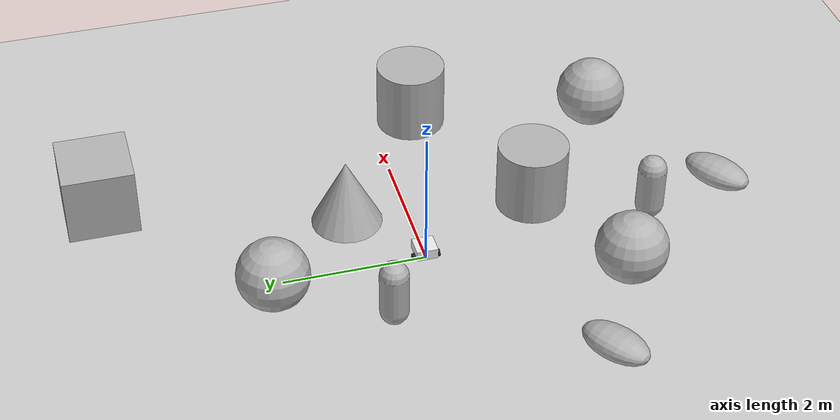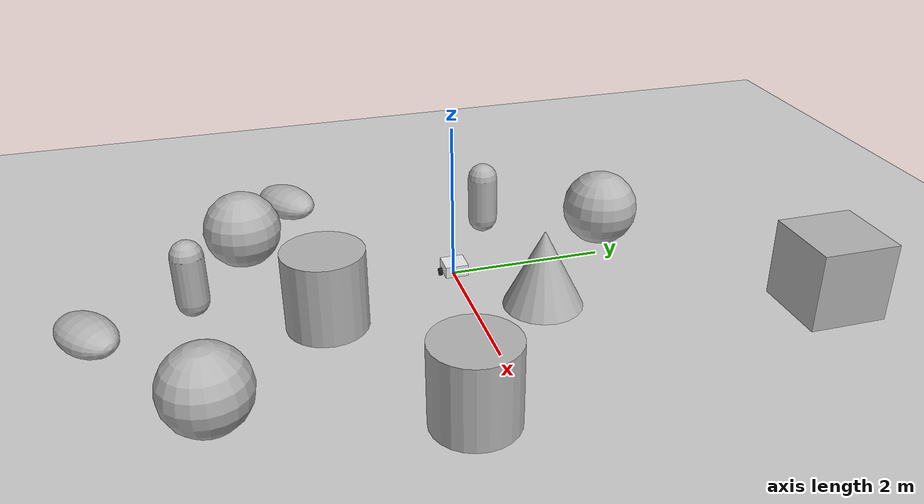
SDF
<sdf version='1.10'>
  <world name='empty'>
    <physics name='1ms' type='ignored'>
      <max_step_size>0.001</max_step_size>
      <real_time_factor>1</real_time_factor>
      <real_time_update_rate>1000</real_time_update_rate>
    </physics>
    <plugin name='gz::sim::systems::Physics' filename='gz-sim-physics-system'/>
    <plugin name='gz::sim::systems::UserCommands' filename='gz-sim-user-commands-system'/>
    <plugin name='gz::sim::systems::SceneBroadcaster' filename='gz-sim-scene-broadcaster-system'/>
    <plugin name='gz::sim::systems::Contact' filename='gz-sim-contact-system'/>
    <gravity>0 0 -9.8000000000000007</gravity>
    <magnetic_field>5.5644999999999998e-06 2.2875799999999999e-05 -4.2388400000000002e-05</magnetic_field>
    <atmosphere type='adiabatic'/>
    <scene>
      <ambient>0.400000006 0.400000006 0.400000006 1</ambient>
      <background>0.699999988 0.699999988 0.699999988 1</background>
      <shadows>true</shadows>
    </scene>
    <model name='ground_plane'>
      <static>true</static>
      <link name='link'>
        <collision name='collision'>
          <geometry>
            <plane>
              <normal>0 0 1</normal>
              <size>100 100</size>
            </plane>
          </geometry>
          <surface>
            <friction>
              <ode/>
            </friction>
            <bounce/>
            <contact/>
          </surface>
        </collision>
        <visual name='visual'>
          <geometry>
            <plane>
              <normal>0 0 1</normal>
              <size>100 100</size>
            </plane>
          </geometry>
          <material>
            <ambient>0.800000012 0.800000012 0.800000012 1</ambient>
            <diffuse>0.800000012 0.800000012 0.800000012 1</diffuse>
            <specular>0.800000012 0.800000012 0.800000012 1</specular>
          </material>
        </visual>
        <pose>0 0 0 0 0 0</pose>
        <inertial>
          <pose>0 0 0 0 0 0</pose>
          <mass>1</mass>
          <inertia>
            <ixx>1</ixx>
            <ixy>0</ixy>
            <ixz>0</ixz>
            <iyy>1</iyy>
            <iyz>0</iyz>
            <izz>1</izz>
          </inertia>
        </inertial>
        <enable_wind>false</enable_wind>
      </link>
      <pose>0 0 0 0 0 0</pose>
      <self_collide>false</self_collide>
    </model>
    <model name='robot'>
      <link name='base_link'>
        <inertial>
          <pose>0.065000000000000002 0 0.0625 0 0 0</pose>
          <mass>0.59999999999999998</mass>
          <inertia>
            <ixx>0.0052562499999999988</ixx>
            <ixy>0</ixy>
            <ixz>0.00056250000000000028</ixz>
            <iyy>0.0059312499999999964</iyy>
            <iyz>0</iyz>
            <izz>0.0082749999999999976</izz>
          </inertia>
        </inertial>
        <collision name='base_link_fixed_joint_lump__chassis_collision'>
          <pose>0.049999999999999989 0 0.074999999999999997 0 0 0</pose>
          <geometry>
            <box>
              <size>0.29999999999999999 0.29999999999999999 0.14999999999999999</size>
            </box>
          </geometry>
          <surface>
            <contact>
              <ode/>
            </contact>
            <friction>
              <ode/>
            </friction>
            <bounce/>
          </surface>
        </collision>
        <collision name='base_link_fixed_joint_lump__caster_wheel_collision_1'>
          <pose>0.14000000000000001 0 0 0 0 0</pose>
          <geometry>
            <sphere>
              <radius>0.050000000000000003</radius>
            </sphere>
          </geometry>
          <surface>
            <contact>
              <ode/>
            </contact>
            <friction>
              <ode>
                <mu>0.001</mu>
                <mu2>0.001</mu2>
              </ode>
            </friction>
            <bounce/>
          </surface>
        </collision>
        <visual name='base_link_fixed_joint_lump__chassis_visual'>
          <pose>0.049999999999999989 0 0.074999999999999997 0 0 0</pose>
          <geometry>
            <box>
              <size>0.29999999999999999 0.29999999999999999 0.14999999999999999</size>
            </box>
          </geometry>
          <material>
            <script>
              <name>Gazebo/White</name>
              <uri>file://media/materials/scripts/gazebo.material</uri>
            </script>
            <diffuse>1 1 1 0.800000012</diffuse>
            <ambient>1 1 1 0.800000012</ambient>
          </material>
        </visual>
        <visual name='base_link_fixed_joint_lump__caster_wheel_visual_1'>
          <pose>0.14000000000000001 0 0 0 0 0</pose>
          <geometry>
            <sphere>
              <radius>0.050000000000000003</radius>
            </sphere>
          </geometry>
          <material>
            <script>
              <name>Gazebo/Yellow</name>
              <uri>file://media/materials/scripts/gazebo.material</uri>
            </script>
            <diffuse>0.9375 0.9375 0.9375 1</diffuse>
            <ambient>0.9375 0.9375 0.9375 1</ambient>
          </material>
        </visual>
        <pose>0 0 0 0 0 0</pose>
        <enable_wind>false</enable_wind>
      </link>
      <joint name='left_wheel_joint' type='revolute'>
        <pose>3.0814879110195774e-33 -2.686764968359643e-19 0 -2.0293072715139102e-17 1.661834835939152e-34 1.6734078567209326e-34</pose>
        <parent>base_link</parent>
        <child>left_wheel</child>
        <axis>
          <xyz>1.661834835939152e-34 2.0293072715139102e-17 1</xyz>
          <limit>
            <lower>-inf</lower>
            <upper>inf</upper>
            <effort>inf</effort>
            <velocity>inf</velocity>
            <stiffness>100000000</stiffness>
            <dissipation>1</dissipation>
          </limit>
          <dynamics>
            <spring_reference>0</spring_reference>
            <spring_stiffness>0</spring_stiffness>
            <damping>0</damping>
            <friction>0</friction>
          </dynamics>
        </axis>
      </joint>
      <link name='left_wheel'>
        <pose>6.1148577720110018e-26 0.17499999999999996 -6.9388939039072284e-18 1.570796326794897 -2.3091550991555613e-17 3.1415926535897931</pose>
        <inertial>
          <pose>0 0 0 0 0 0</pose>
          <mass>0.10000000000000001</mass>
          <inertia>
            <ixx>7.5833333333333352e-05</ixx>
            <ixy>0</ixy>
            <ixz>0</ixz>
            <iyy>7.5833333333333352e-05</iyy>
            <iyz>0</iyz>
            <izz>0.000125</izz>
          </inertia>
        </inertial>
        <collision name='left_wheel_collision'>
          <pose>0 0 0 0 0 0</pose>
          <geometry>
            <cylinder>
              <length>0.040000000000000001</length>
              <radius>0.050000000000000003</radius>
            </cylinder>
          </geometry>
          <surface>
            <contact>
              <ode/>
            </contact>
            <friction>
              <ode/>
            </friction>
            <bounce/>
          </surface>
        </collision>
        <visual name='left_wheel_visual'>
          <pose>0 0 0 0 0 0</pose>
          <geometry>
            <cylinder>
              <length>0.040000000000000001</length>
              <radius>0.050000000000000003</radius>
            </cylinder>
          </geometry>
          <material>
            <script>
              <name>Gazebo/Black</name>
              <uri>file://media/materials/scripts/gazebo.material</uri>
            </script>
            <diffuse>0 0 0 1</diffuse>
            <ambient>0 0 0 1</ambient>
          </material>
        </visual>
        <enable_wind>false</enable_wind>
      </link>
      <joint name='right_wheel_joint' type='revolute'>
        <pose>0 6.7350005778795877e-18 0 -2.0293072715139201e-17 0 0</pose>
        <parent>base_link</parent>
        <child>right_wheel</child>
        <axis>
          <xyz>0 -2.0293072715139201e-17 -1</xyz>
          <limit>
            <lower>-inf</lower>
            <upper>inf</upper>
            <effort>inf</effort>
            <velocity>inf</velocity>
            <stiffness>100000000</stiffness>
            <dissipation>1</dissipation>
          </limit>
          <dynamics>
            <spring_reference>0</spring_reference>
            <spring_stiffness>0</spring_stiffness>
            <damping>0</damping>
            <friction>0</friction>
          </dynamics>
        </axis>
      </joint>
      <link name='right_wheel'>
        <pose>-5.8486954862918502e-26 -0.17500000000000002 0 1.5707963267948959 -1.3858752126361556e-17 5.240643682082435e-25</pose>
        <inertial>
          <pose>0 0 0 0 0 0</pose>
          <mass>0.10000000000000001</mass>
          <inertia>
            <ixx>7.5833333333333352e-05</ixx>
            <ixy>0</ixy>
            <ixz>0</ixz>
            <iyy>7.5833333333333352e-05</iyy>
            <iyz>0</iyz>
            <izz>0.000125</izz>
          </inertia>
        </inertial>
        <collision name='right_wheel_collision'>
          <pose>0 0 0 0 0 0</pose>
          <geometry>
            <cylinder>
              <length>0.040000000000000001</length>
              <radius>0.050000000000000003</radius>
            </cylinder>
          </geometry>
          <surface>
            <contact>
              <ode/>
            </contact>
            <friction>
              <ode/>
            </friction>
            <bounce/>
          </surface>
        </collision>
        <visual name='right_wheel_visual'>
          <pose>0 0 0 0 0 0</pose>
          <geometry>
            <cylinder>
              <length>0.040000000000000001</length>
              <radius>0.050000000000000003</radius>
            </cylinder>
          </geometry>
          <material>
            <script>
              <name>Gazebo/Black</name>
              <uri>file://media/materials/scripts/gazebo.material</uri>
            </script>
            <diffuse>0 0 0 1</diffuse>
            <ambient>0 0 0 1</ambient>
          </material>
        </visual>
        <enable_wind>false</enable_wind>
      </link>
      <plugin name='gz::sim::systems::DiffDrive' filename='gz-sim-diff-drive-system'>
        <left_joint>left_wheel_joint</left_joint>
        <right_joint>right_wheel_joint</right_joint>
        <wheel_separation>0.35</wheel_separation>
        <wheel_radius>0.05</wheel_radius>
        <max_linear_acceleration>20.0</max_linear_acceleration>
        <max_wheel_torque>100</max_wheel_torque>
        <topic>cmd_vel</topic>
        <odom_topic>odom</odom_topic>
        <frame_id>odom</frame_id>
        <child_frame_id>base_link</child_frame_id>
        <publish_odom>true</publish_odom>
        <publish_odom_tf>true</publish_odom_tf>
        <publish_wheel_tf>true</publish_wheel_tf>
      </plugin>
      <plugin name='gz::sim::systems::JointStatePublisher' filename='gz-sim-joint-state-publisher-system'>
        <topic>joint_states</topic>
        <joint_name>left_wheel_joint</joint_name>
        <joint_name>right_wheel_joint</joint_name>
      </plugin>
      <frame name='caster_wheel_link' attached_to='chassis'>
        <pose>0.23999999999999999 0 0 0 0 0</pose>
      </frame>
      <frame name='caster_wheel' attached_to='caster_wheel_link'>
        <pose>0 0 0 0 0 0</pose>
      </frame>
      <frame name='chassis_joint' attached_to='base_link'>
        <pose>-0.10000000000000001 0 0 0 0 0</pose>
      </frame>
      <frame name='chassis' attached_to='chassis_joint'>
        <pose>0 0 0 0 0 0</pose>
      </frame>
      <pose>5.0080660738400776e-10 -2.275982621111749e-16 0.049999994810990905 4.9679083468377787e-15 1.001613221463183e-08 -4.1162630017289003e-17</pose>
      <static>false</static>
      <self_collide>false</self_collide>
    </model>
    <model name='cone'>
      <pose>1.0566565018909955 0.8556041575203317 0.49999999602630368 2.1489919356272052e-09 -8.0147252590950264e-09 -1.0114619432479267e-14</pose>
      <link name='cone_link'>
        <inertial>
          <inertia>
            <ixx>0.074999999999999997</ixx>
            <ixy>0</ixy>
            <ixz>0</ixz>
            <iyy>0.074999999999999997</iyy>
            <iyz>0</iyz>
            <izz>0.074999999999999997</izz>
          </inertia>
          <mass>1</mass>
          <pose>0 0 0 0 0 0</pose>
        </inertial>
        <collision name='cone_collision'>
          <geometry>
            <cone>
              <radius>0.5</radius>
              <length>1</length>
            </cone>
          </geometry>
          <surface>
            <friction>
              <ode/>
            </friction>
            <bounce/>
            <contact/>
          </surface>
        </collision>
        <visual name='cone_visual'>
          <geometry>
            <cone>
              <radius>0.5</radius>
              <length>1</length>
            </cone>
          </geometry>
          <material>
            <ambient>0.300000012 0.300000012 0.300000012 1</ambient>
            <diffuse>0.699999988 0.699999988 0.699999988 1</diffuse>
            <specular>1 1 1 1</specular>
          </material>
        </visual>
        <pose>0 0 0 0 0 0</pose>
        <enable_wind>false</enable_wind>
      </link>
      <static>false</static>
      <self_collide>false</self_collide>
    </model>
    <model name='cylinder'>
      <pose>0.78746553411709375 -1.7667481294421423 0.49999999631413172 -9.6359215885351035e-18 -5.7262084307341396e-17 2.2892490610145147e-17</pose>
      <link name='cylinder_link'>
        <inertial>
          <inertia>
            <ixx>0.14580000000000001</ixx>
            <ixy>0</ixy>
            <ixz>0</ixz>
            <iyy>0.14580000000000001</iyy>
            <iyz>0</iyz>
            <izz>0.125</izz>
          </inertia>
          <mass>1</mass>
          <pose>0 0 0 0 0 0</pose>
        </inertial>
        <collision name='cylinder_collision'>
          <geometry>
            <cylinder>
              <radius>0.5</radius>
              <length>1</length>
            </cylinder>
          </geometry>
          <surface>
            <friction>
              <ode/>
            </friction>
            <bounce/>
            <contact/>
          </surface>
        </collision>
        <visual name='cylinder_visual'>
          <geometry>
            <cylinder>
              <radius>0.5</radius>
              <length>1</length>
            </cylinder>
          </geometry>
          <material>
            <ambient>0.300000012 0.300000012 0.300000012 1</ambient>
            <diffuse>0.699999988 0.699999988 0.699999988 1</diffuse>
            <specular>1 1 1 1</specular>
          </material>
        </visual>
        <pose>0 0 0 0 0 0</pose>
        <enable_wind>false</enable_wind>
      </link>
      <static>false</static>
      <self_collide>false</self_collide>
    </model>
    <model name='capsule'>
      <pose>-1.099770901406921 0.73123100639006677 0.49999999020000274 0 0 0</pose>
      <link name='capsule_link'>
        <inertial>
          <inertia>
            <ixx>0.074153999999999998</ixx>
            <ixy>0</ixy>
            <ixz>0</ixz>
            <iyy>0.074153999999999998</iyy>
            <iyz>0</iyz>
            <izz>0.018769000000000001</izz>
          </inertia>
          <mass>1</mass>
          <pose>0 0 0 0 0 0</pose>
        </inertial>
        <collision name='capsule_collision'>
          <geometry>
            <capsule>
              <radius>0.20000000000000001</radius>
              <length>0.59999999999999998</length>
            </capsule>
          </geometry>
          <surface>
            <friction>
              <ode/>
            </friction>
            <bounce/>
            <contact/>
          </surface>
        </collision>
        <visual name='capsule_visual'>
          <geometry>
            <capsule>
              <radius>0.20000000000000001</radius>
              <length>0.59999999999999998</length>
            </capsule>
          </geometry>
          <material>
            <ambient>0.300000012 0.300000012 0.300000012 1</ambient>
            <diffuse>0.699999988 0.699999988 0.699999988 1</diffuse>
            <specular>1 1 1 1</specular>
          </material>
        </visual>
        <pose>0 0 0 0 0 0</pose>
        <enable_wind>false</enable_wind>
      </link>
      <static>false</static>
      <self_collide>false</self_collide>
    </model>
    <model name='ellipsoid'>
      <pose>-2.4260958961574453 -1.8574463369977108 0.18666848753861814 1.5707963267948863 -1.377489697700035 -0.98012862669004841</pose>
      <link name='ellipsoid_link'>
        <inertial>
          <inertia>
            <ixx>0.068000000000000005</ixx>
            <ixy>0</ixy>
            <ixz>0</ixz>
            <iyy>0.058000000000000003</iyy>
            <iyz>0</iyz>
            <izz>0.025999999999999999</izz>
          </inertia>
          <mass>1</mass>
          <pose>0 0 0 0 0 0</pose>
        </inertial>
        <collision name='ellipsoid_collision'>
          <geometry>
            <ellipsoid>
              <radii>0.20000000000000001 0.29999999999999999 0.5</radii>
            </ellipsoid>
          </geometry>
          <surface>
            <friction>
              <ode/>
            </friction>
            <bounce/>
            <contact/>
          </surface>
        </collision>
        <visual name='ellipsoid_visual'>
          <geometry>
            <ellipsoid>
              <radii>0.20000000000000001 0.29999999999999999 0.5</radii>
            </ellipsoid>
          </geometry>
          <material>
            <ambient>0.300000012 0.300000012 0.300000012 1</ambient>
            <diffuse>0.699999988 0.699999988 0.699999988 1</diffuse>
            <specular>1 1 1 1</specular>
          </material>
        </visual>
        <pose>0 0 0 0 0 0</pose>
        <enable_wind>false</enable_wind>
      </link>
      <static>false</static>
      <self_collide>false</self_collide>
    </model>
    <model name='cylinder_0'>
      <pose>3.0764837405353465 -0.61369960941644208 0.49999999631413172 -1.728194940527117e-17 5.9431014586288697e-18 2.7827239198683113e-18</pose>
      <link name='cylinder_link'>
        <inertial>
          <inertia>
            <ixx>0.14580000000000001</ixx>
            <ixy>0</ixy>
            <ixz>0</ixz>
            <iyy>0.14580000000000001</iyy>
            <iyz>0</iyz>
            <izz>0.125</izz>
          </inertia>
          <mass>1</mass>
          <pose>0 0 0 0 0 0</pose>
        </inertial>
        <collision name='cylinder_collision'>
          <geometry>
            <cylinder>
              <radius>0.5</radius>
              <length>1</length>
            </cylinder>
          </geometry>
          <surface>
            <friction>
              <ode/>
            </friction>
            <bounce/>
            <contact/>
          </surface>
        </collision>
        <visual name='cylinder_visual'>
          <geometry>
            <cylinder>
              <radius>0.5</radius>
              <length>1</length>
            </cylinder>
          </geometry>
          <material>
            <ambient>0.300000012 0.300000012 0.300000012 1</ambient>
            <diffuse>0.699999988 0.699999988 0.699999988 1</diffuse>
            <specular>1 1 1 1</specular>
          </material>
        </visual>
        <pose>0 0 0 0 0 0</pose>
        <enable_wind>false</enable_wind>
      </link>
      <static>false</static>
      <self_collide>false</self_collide>
    </model>
    <model name='sphere'>
      <pose>2.4231877144425642 -3.2163926055637568 0.49999999020007929 0 0 0</pose>
      <link name='sphere_link'>
        <inertial>
          <inertia>
            <ixx>0.10000000000000001</ixx>
            <ixy>0</ixy>
            <ixz>0</ixz>
            <iyy>0.10000000000000001</iyy>
            <iyz>0</iyz>
            <izz>0.10000000000000001</izz>
          </inertia>
          <mass>1</mass>
          <pose>0 0 0 0 0 0</pose>
        </inertial>
        <collision name='sphere_collision'>
          <geometry>
            <sphere>
              <radius>0.5</radius>
            </sphere>
          </geometry>
          <surface>
            <friction>
              <ode/>
            </friction>
            <bounce/>
            <contact/>
          </surface>
        </collision>
        <visual name='sphere_visual'>
          <geometry>
            <sphere>
              <radius>0.5</radius>
            </sphere>
          </geometry>
          <material>
            <ambient>0.300000012 0.300000012 0.300000012 1</ambient>
            <diffuse>0.699999988 0.699999988 0.699999988 1</diffuse>
            <specular>1 1 1 1</specular>
          </material>
        </visual>
        <pose>0 0 0 0 0 0</pose>
        <enable_wind>false</enable_wind>
      </link>
      <static>false</static>
      <self_collide>false</self_collide>
    </model>
    <model name='box'>
      <pose>2.079968336541997 4.1753194123079114 0.49999999019962771 5.4679632367081554e-17 -1.8373831898474627e-20 8.3923809367064588e-19</pose>
      <link name='box_link'>
        <inertial>
          <inertia>
            <ixx>0.16666</ixx>
            <ixy>0</ixy>
            <ixz>0</ixz>
            <iyy>0.16666</iyy>
            <iyz>0</iyz>
            <izz>0.16666</izz>
          </inertia>
          <mass>1</mass>
          <pose>0 0 0 0 0 0</pose>
        </inertial>
        <collision name='box_collision'>
          <geometry>
            <box>
              <size>1 1 1</size>
            </box>
          </geometry>
          <surface>
            <friction>
              <ode/>
            </friction>
            <bounce/>
            <contact/>
          </surface>
        </collision>
        <visual name='box_visual'>
          <geometry>
            <box>
              <size>1 1 1</size>
            </box>
          </geometry>
          <material>
            <ambient>0.300000012 0.300000012 0.300000012 1</ambient>
            <diffuse>0.699999988 0.699999988 0.699999988 1</diffuse>
            <specular>1 1 1 1</specular>
          </material>
        </visual>
        <pose>0 0 0 0 0 0</pose>
        <enable_wind>false</enable_wind>
      </link>
      <static>false</static>
      <self_collide>false</self_collide>
    </model>
    <model name='sphere_0'>
      <pose>-0.34474312620855496 2.1793273266712281 0.49999999020008112 0 0 0</pose>
      <link name='sphere_link'>
        <inertial>
          <inertia>
            <ixx>0.10000000000000001</ixx>
            <ixy>0</ixy>
            <ixz>0</ixz>
            <iyy>0.10000000000000001</iyy>
            <iyz>0</iyz>
            <izz>0.10000000000000001</izz>
          </inertia>
          <mass>1</mass>
          <pose>0 0 0 0 0 0</pose>
        </inertial>
        <collision name='sphere_collision'>
          <geometry>
            <sphere>
              <radius>0.5</radius>
            </sphere>
          </geometry>
          <surface>
            <friction>
              <ode/>
            </friction>
            <bounce/>
            <contact/>
          </surface>
        </collision>
        <visual name='sphere_visual'>
          <geometry>
            <sphere>
              <radius>0.5</radius>
            </sphere>
          </geometry>
          <material>
            <ambient>0.300000012 0.300000012 0.300000012 1</ambient>
            <diffuse>0.699999988 0.699999988 0.699999988 1</diffuse>
            <specular>1 1 1 1</specular>
          </material>
        </visual>
        <pose>0 0 0 0 0 0</pose>
        <enable_wind>false</enable_wind>
      </link>
      <static>false</static>
      <self_collide>false</self_collide>
    </model>
    <model name='ellipsoid_0'>
      <pose>0.51080375489052032 -4.4794943534361975 0.18666848753861803 1.570796326794891 -1.3774896977000304 -0.96734841873208532</pose>
      <link name='ellipsoid_link'>
        <inertial>
          <inertia>
            <ixx>0.068000000000000005</ixx>
            <ixy>0</ixy>
            <ixz>0</ixz>
            <iyy>0.058000000000000003</iyy>
            <iyz>0</iyz>
            <izz>0.025999999999999999</izz>
          </inertia>
          <mass>1</mass>
          <pose>0 0 0 0 0 0</pose>
        </inertial>
        <collision name='ellipsoid_collision'>
          <geometry>
            <ellipsoid>
              <radii>0.20000000000000001 0.29999999999999999 0.5</radii>
            </ellipsoid>
          </geometry>
          <surface>
            <friction>
              <ode/>
            </friction>
            <bounce/>
            <contact/>
          </surface>
        </collision>
        <visual name='ellipsoid_visual'>
          <geometry>
            <ellipsoid>
              <radii>0.20000000000000001 0.29999999999999999 0.5</radii>
            </ellipsoid>
          </geometry>
          <material>
            <ambient>0.300000012 0.300000012 0.300000012 1</ambient>
            <diffuse>0.699999988 0.699999988 0.699999988 1</diffuse>
            <specular>1 1 1 1</specular>
          </material>
        </visual>
        <pose>0 0 0 0 0 0</pose>
        <enable_wind>false</enable_wind>
      </link>
      <static>false</static>
      <self_collide>false</self_collide>
    </model>
    <model name='capsule_0'>
      <pose>0.087792214610092678 -3.2773587592030031 0.49999999020000274 0 0 0</pose>
      <link name='capsule_link'>
        <inertial>
          <inertia>
            <ixx>0.074153999999999998</ixx>
            <ixy>0</ixy>
            <ixz>0</ixz>
            <iyy>0.074153999999999998</iyy>
            <iyz>0</iyz>
            <izz>0.018769000000000001</izz>
          </inertia>
          <mass>1</mass>
          <pose>0 0 0 0 0 0</pose>
        </inertial>
        <collision name='capsule_collision'>
          <geometry>
            <capsule>
              <radius>0.20000000000000001</radius>
              <length>0.59999999999999998</length>
            </capsule>
          </geometry>
          <surface>
            <friction>
              <ode/>
            </friction>
            <bounce/>
            <contact/>
          </surface>
        </collision>
        <visual name='capsule_visual'>
          <geometry>
            <capsule>
              <radius>0.20000000000000001</radius>
              <length>0.59999999999999998</length>
            </capsule>
          </geometry>
          <material>
            <ambient>0.300000012 0.300000012 0.300000012 1</ambient>
            <diffuse>0.699999988 0.699999988 0.699999988 1</diffuse>
            <specular>1 1 1 1</specular>
          </material>
        </visual>
        <pose>0 0 0 0 0 0</pose>
        <enable_wind>false</enable_wind>
      </link>
      <static>false</static>
      <self_collide>false</self_collide>
    </model>
    <model name='sphere_1'>
      <pose>-1.0562264849112601 -2.5685028196578705 0.49999999020008074 0 0 0</pose>
      <link name='sphere_link'>
        <inertial>
          <inertia>
            <ixx>0.10000000000000001</ixx>
            <ixy>0</ixy>
            <ixz>0</ixz>
            <iyy>0.10000000000000001</iyy>
            <iyz>0</iyz>
            <izz>0.10000000000000001</izz>
          </inertia>
          <mass>1</mass>
          <pose>0 0 0 0 0 0</pose>
        </inertial>
        <collision name='sphere_collision'>
          <geometry>
            <sphere>
              <radius>0.5</radius>
            </sphere>
          </geometry>
          <surface>
            <friction>
              <ode/>
            </friction>
            <bounce/>
            <contact/>
          </surface>
        </collision>
        <visual name='sphere_visual'>
          <geometry>
            <sphere>
              <radius>0.5</radius>
            </sphere>
          </geometry>
          <material>
            <ambient>0.300000012 0.300000012 0.300000012 1</ambient>
            <diffuse>0.699999988 0.699999988 0.699999988 1</diffuse>
            <specular>1 1 1 1</specular>
          </material>
        </visual>
        <pose>0 0 0 0 0 0</pose>
        <enable_wind>false</enable_wind>
      </link>
      <static>false</static>
      <self_collide>false</self_collide>
    </model>
    <light name='sun' type='directional'>
      <pose>0 0 10 0 0 0</pose>
      <cast_shadows>true</cast_shadows>
      <intensity>1</intensity>
      <direction>-0.5 0.10000000000000001 -0.90000000000000002</direction>
      <diffuse>0.800000012 0.800000012 0.800000012 1</diffuse>
      <specular>0.200000003 0.200000003 0.200000003 1</specular>
      <attenuation>
        <range>1000</range>
        <linear>0.01</linear>
        <constant>0.90000000000000002</constant>
        <quadratic>0.001</quadratic>
      </attenuation>
      <spot>
        <inner_angle>0</inner_angle>
        <outer_angle>0</outer_angle>
        <falloff>0</falloff>
      </spot>
    </light>
  </world>
</sdf>
